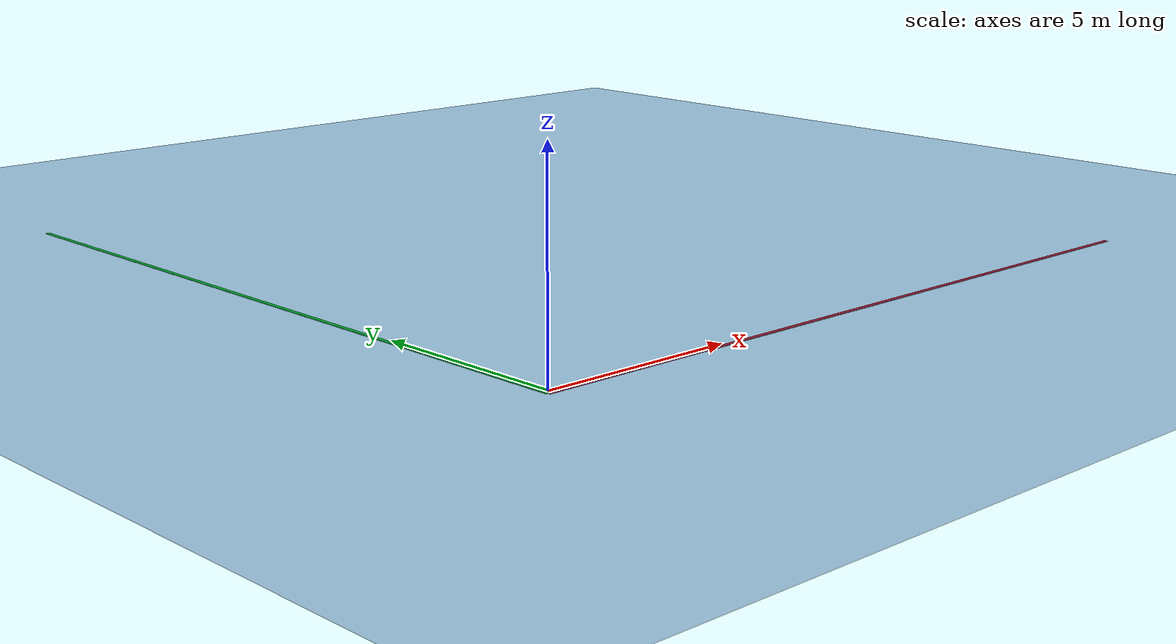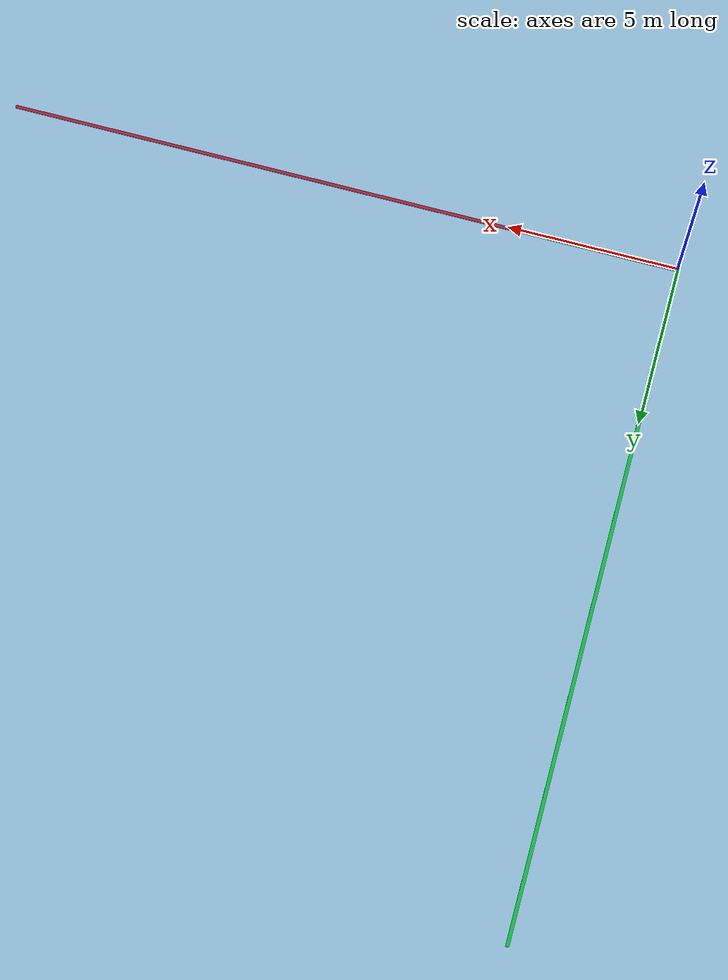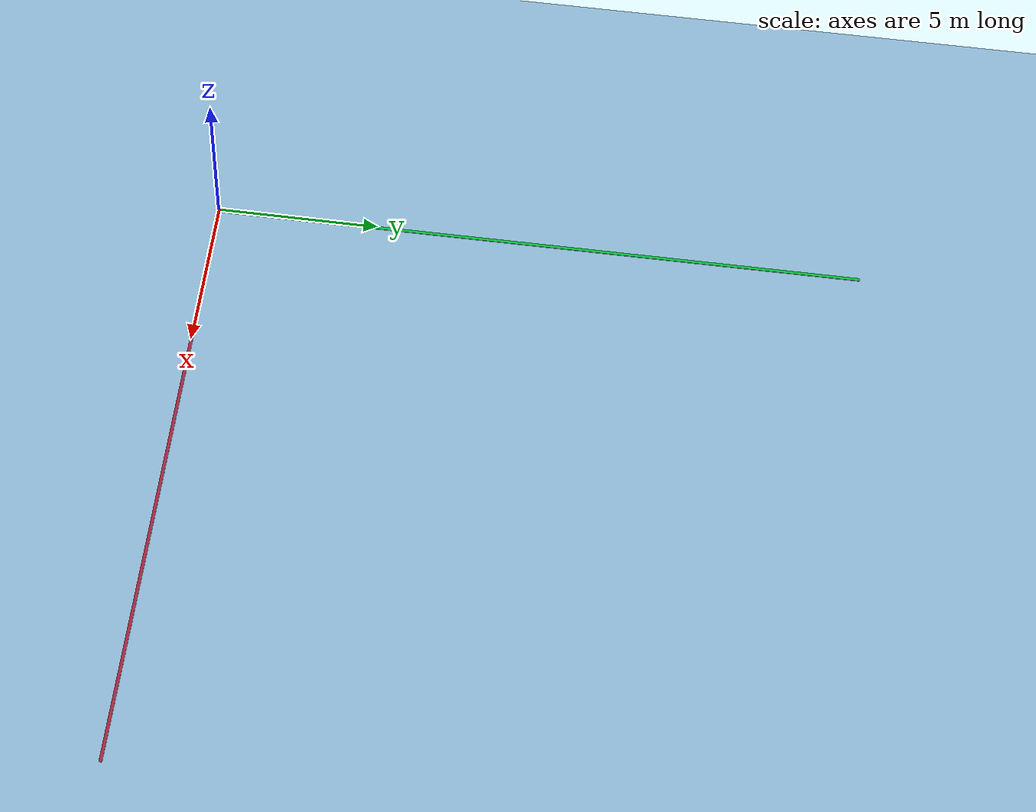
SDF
<?xml version="1.0"?>
<sdf version="1.6">
  <world name="nm3_beacon">
    <!-- No gravity: the agent is a kinematic surface vessel driven by planar_move. -->
    <gravity>0 0 0</gravity>
    <include><uri>model://sun</uri></include>
    <scene>
      <ambient>0.5 0.5 0.55 1</ambient>
      <background>0.6 0.75 0.9 1</background>
      <shadows>false</shadows>
    </scene>

    <!-- Water surface at z = 0 (visual only). -->
    <model name="water_surface">
      <static>true</static>
      <link name="link">
        <visual name="visual">
          <geometry><box><size>400 400 0.02</size></box></geometry>
          <transparency>0.6</transparency>
          <material><ambient>0.1 0.35 0.6 1</ambient><diffuse>0.1 0.35 0.6 1</diffuse></material>
        </visual>
      </link>
    </model>

    <!-- 10 m reference grid just below the surface. -->
    <model name="grid">
      <static>true</static>
      <link name="link">
        <visual name="x_axis">
          <pose>10 0 -0.05 0 0 0</pose>
          <geometry><box><size>20 0.1 0.02</size></box></geometry>
          <material><ambient>1 0 0 1</ambient><diffuse>1 0 0 1</diffuse></material>
        </visual>
        <visual name="y_axis">
          <pose>0 10 -0.05 0 0 0</pose>
          <geometry><box><size>0.1 20 0.02</size></box></geometry>
          <material><ambient>0 1 0 1</ambient><diffuse>0 1 0 1</diffuse></material>
        </visual>
      </link>
    </model>

    <gui>
      <camera name="user_camera">
        <pose>-25 -35 40 0 0.75 0.95</pose>
      </camera>
    </gui>
  </world>
</sdf>
